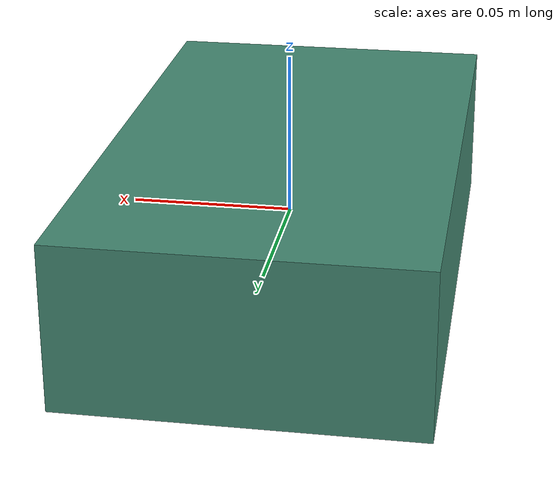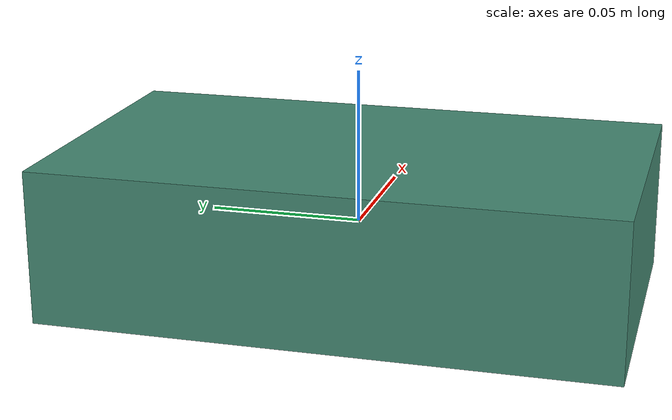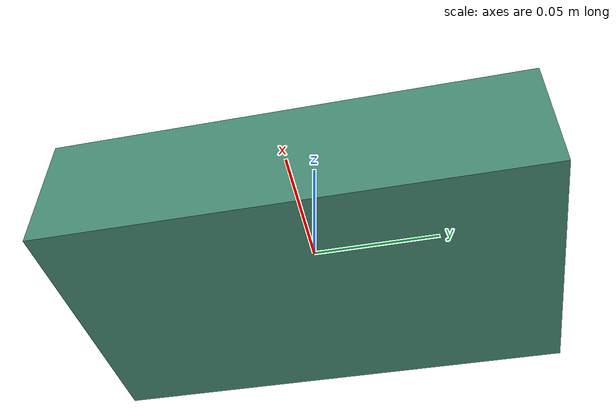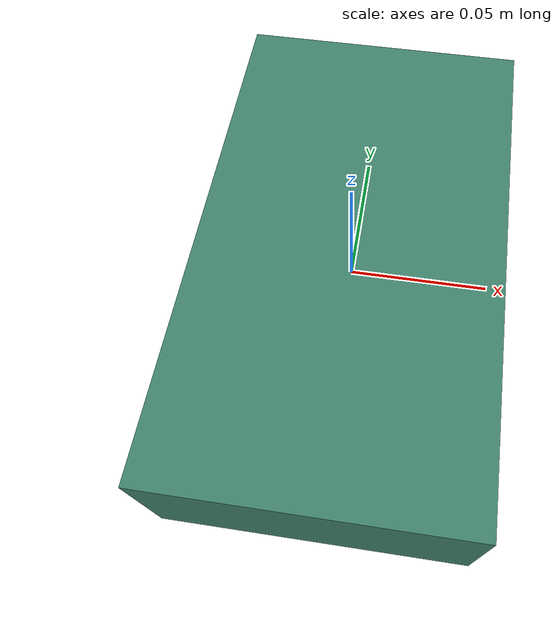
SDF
<?xml version="1.0"?>
<sdf version="1.7">
  <model name="sugar_box">
    <!-- Matches planning Box2d(width=0.106, height=0.185). Origin at box center. -->
    <link name="sugar_box">
      <inertial>
        <mass>0.1</mass>
        <inertia>
          <ixx>3.2e-4</ixx>
          <ixy>0</ixy>
          <ixz>0</ixz>
          <iyy>1.0e-4</iyy>
          <iyz>0</iyz>
          <izz>4.2e-4</izz>
        </inertia>
      </inertial>
      <visual name="visual">
        <geometry>
          <box>
            <size>0.106 0.185 0.05</size>
          </box>
        </geometry>
        <material>
          <diffuse>0.26953125 0.54296875 0.453125 1.</diffuse>
        </material>
      </visual>
      <collision name="collision">
        <geometry>
          <box>
            <size>0.106 0.185 0.05</size>
          </box>
        </geometry>
        <drake:proximity_properties>
          <drake:compliant_hydroelastic/>
          <drake:hunt_crossley_dissipation>1.25</drake:hunt_crossley_dissipation>
          <drake:hydroelastic_modulus>1e5</drake:hydroelastic_modulus>
          <drake:mesh_resolution_hint>0.005</drake:mesh_resolution_hint>
          <drake:mu_dynamic>0.5</drake:mu_dynamic>
          <drake:mu_static>0.5</drake:mu_static>
        </drake:proximity_properties>
      </collision>
    </link>
  </model>
</sdf>
